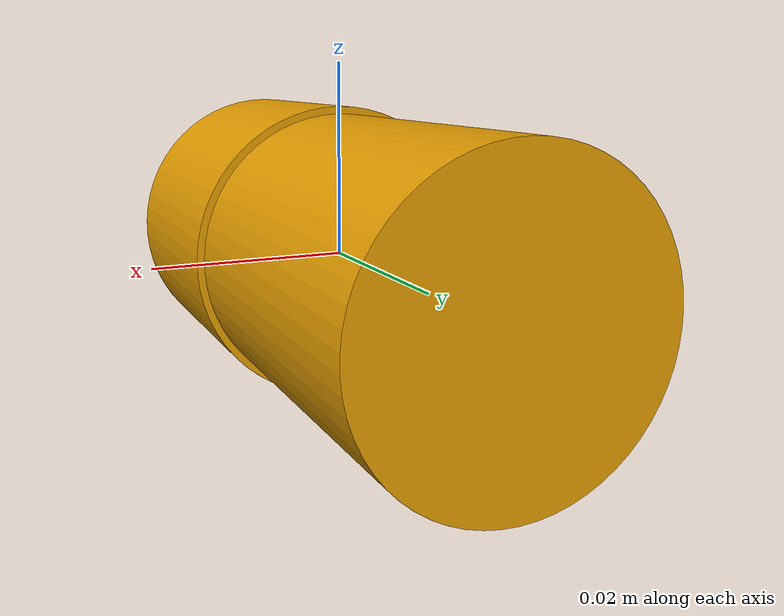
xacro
<?xml version="1.0"?>
<robot name="rov_camera" xmlns:xacro="http://ros.org/wiki/xacro">

    <link name="camera">
        <visual>
        <origin xyz="0 0 0" rpy="0 0 0" />
        <geometry>
            <mesh filename="package://rov_description/meshes/camera.stl" />
        </geometry>
        </visual>
        <collision>
        <origin xyz="0 0 0.0" rpy="0 0 0" />
        <geometry>
            <mesh filename="package://rov_description/meshes/camera.stl" />
        </geometry>
        </collision>
        <inertial>
        <origin xyz="0 0 0" rpy="0 0 0"/>
        <mass value="0.115"/>
        <inertia ixx="0.00004099"  ixy="0.0"  ixz="0.0" iyy="0.00001313" iyz="0.0" izz="0.00004099" />
        </inertial>
    </link>

    <link name="fake_camera"/>

    <joint name="camera_fake" type="fixed">
        <parent link="camera"/>
        <child link="fake_camera"/>
        <origin xyz="0.0 0.0 0.0" rpy="0 0 -1.5704" />
    </joint>

</robot>
